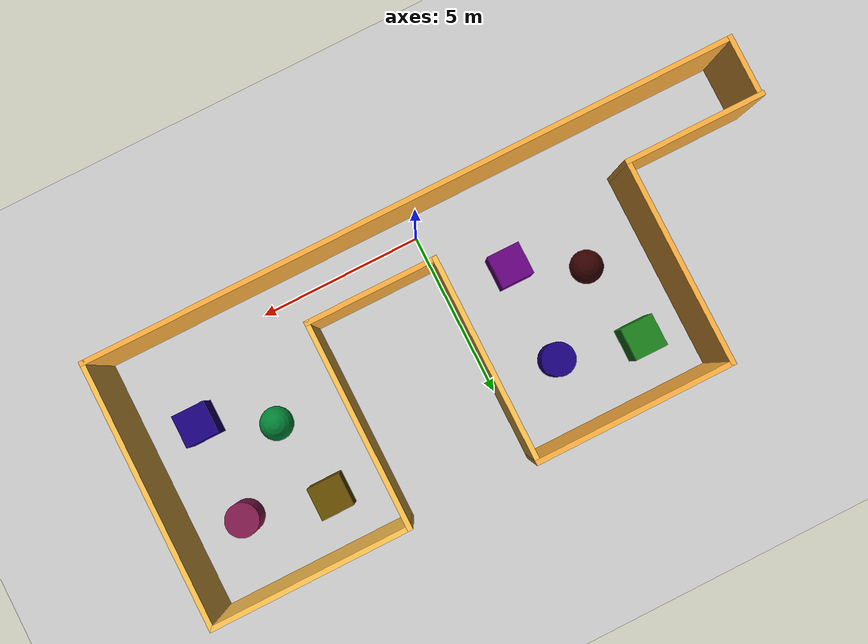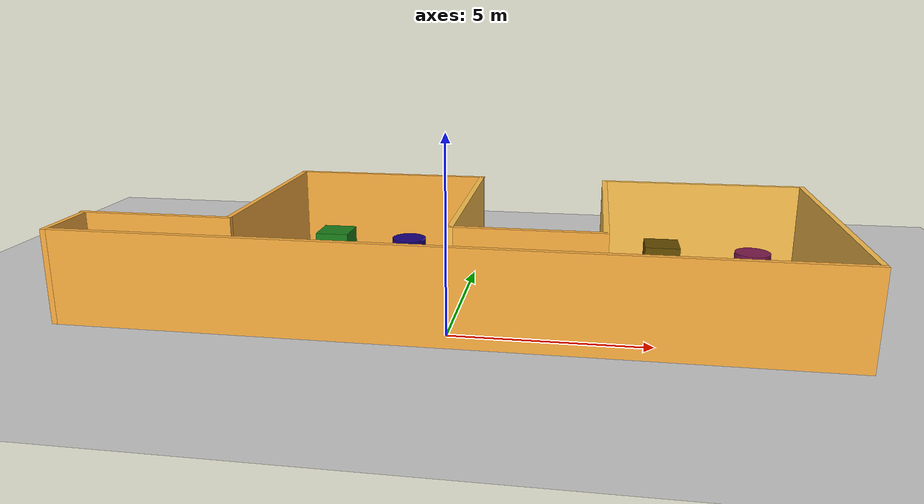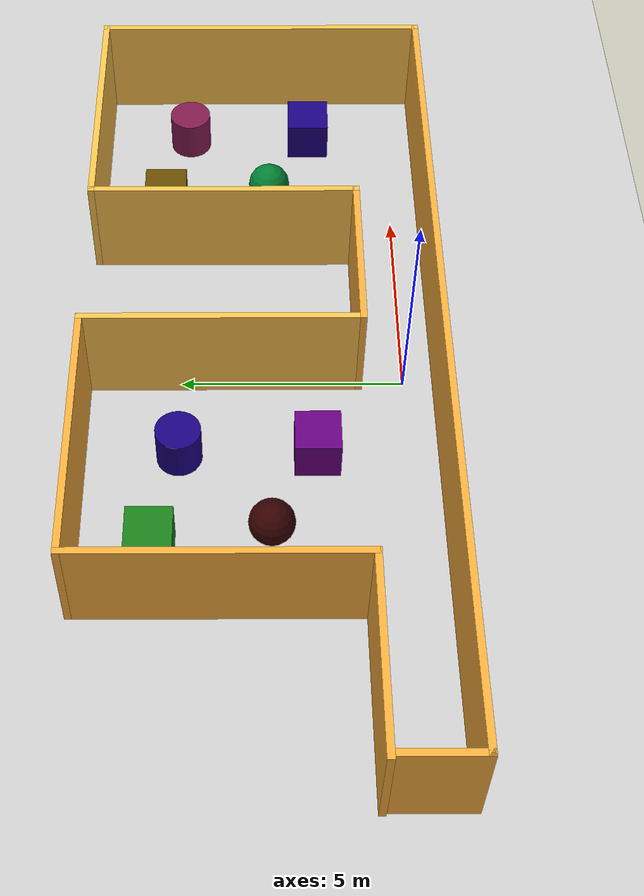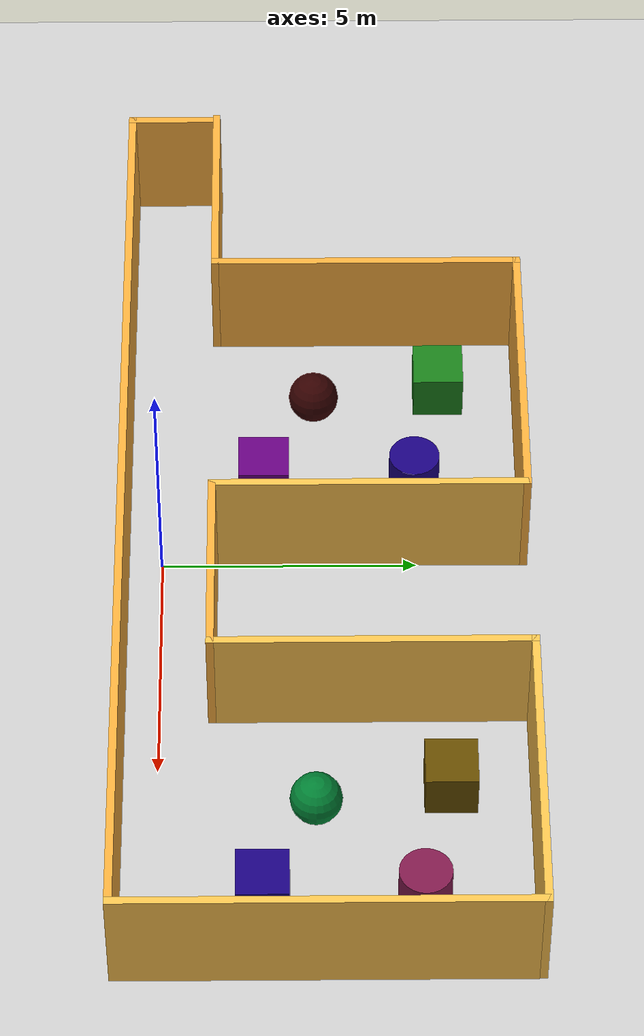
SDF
<sdf version="1.7">
 <world name="default">
  <light name="sun" type="directional">
   <pose>0 0 10 0 -0 0</pose>
   <diffuse>0.8 0.8 0.8 1</diffuse>
   <specular>0.2 0.2 0.2 1</specular>
   <attenuation>
    <range>1000</range>
    <constant>0.9</constant>
    <linear>0.01</linear>
    <quadratic>0.001</quadratic>
   </attenuation>
   <direction>-0.5 0.1 -0.9</direction>
   <spot><inner_angle>0</inner_angle><outer_angle>0</outer_angle><falloff>0</falloff></spot>
  </light>
  <model name="ground_plane">
   <static>1</static>
   <link name="link">
    <collision name="collision">
     <geometry><plane><normal>0 0 1</normal><size>100 100</size></plane></geometry>
     <surface><friction><ode><mu>100</mu><mu2>50</mu2></ode></friction></surface>
    </collision>
    <visual name="visual">
     <cast_shadows>0</cast_shadows>
     <geometry><plane><normal>0 0 1</normal><size>100 100</size></plane></geometry>
     <material>
      <script><uri>file://media/materials/scripts/gazebo.material</uri><name>Gazebo/Grey</name></script>
     </material>
    </visual>
   </link>
  </model>
  <gravity>0 0 -9.8</gravity>
  <magnetic_field>6e-06 2.3e-05 -4.2e-05</magnetic_field>
  <atmosphere type="adiabatic"/>
  <physics type="ode">
   <max_step_size>0.001</max_step_size>
   <real_time_factor>1</real_time_factor>
   <real_time_update_rate>1000</real_time_update_rate>
  </physics>
  <scene><ambient>0.4 0.4 0.4 1</ambient><background>0.7 0.7 0.7 1</background><shadows>1</shadows></scene>
  <spherical_coordinates>
   <surface_model>EARTH_WGS84</surface_model>
   <latitude_deg>0</latitude_deg>
   <longitude_deg>0</longitude_deg>
   <elevation>0</elevation>
   <heading_deg>0</heading_deg>
  </spherical_coordinates>
  <model name="map4_level4">
   <pose>-0.192035 3.19463 0 0 -0 0</pose>
   <link name="Wall_16">
    <collision name="Wall_16_Collision">
     <geometry><box><size>1.75 0.15 2.5</size></box></geometry>
     <pose>0 0 1.25 0 -0 0</pose>
    </collision>
    <visual name="Wall_16_Visual">
     <pose>0 0 1.25 0 -0 0</pose>
     <geometry><box><size>1.75 0.15 2.5</size></box></geometry>
     <material>
      <script><uri>file://media/materials/scripts/gazebo.material</uri><name>Gazebo/Grey</name></script>
      <ambient>0.988235 0.686275 0.243137 1</ambient>
     </material>
     <meta><layer>0</layer></meta>
    </visual>
    <pose>-9.775 -3.125 0 0 -0 -1.5708</pose>
   </link>
   <link name="Wall_17">
    <collision name="Wall_17_Collision">
     <geometry><box><size>19.75 0.15 2.5</size></box></geometry>
     <pose>0 0 1.25 0 -0 0</pose>
    </collision>
    <visual name="Wall_17_Visual">
     <pose>0 0 1.25 0 -0 0</pose>
     <geometry><box><size>19.75 0.15 2.5</size></box></geometry>
     <material>
      <script><uri>file://media/materials/scripts/gazebo.material</uri><name>Gazebo/Grey</name></script>
      <ambient>0.988235 0.686275 0.243137 1</ambient>
     </material>
     <meta><layer>0</layer></meta>
    </visual>
    <pose>0.025 -3.925 0 0 -0 0</pose>
   </link>
   <link name="Wall_20">
    <collision name="Wall_20_Collision">
     <geometry><box><size>8 0.15 2.5</size></box></geometry>
     <pose>0 0 1.25 0 -0 0</pose>
    </collision>
    <visual name="Wall_20_Visual">
     <pose>0 0 1.25 0 -0 0</pose>
     <geometry><box><size>8 0.15 2.5</size></box></geometry>
     <material>
      <script><uri>file://media/materials/scripts/gazebo.material</uri><name>Gazebo/Grey</name></script>
      <ambient>1 0.764706 0.305882 1</ambient>
     </material>
     <meta><layer>0</layer></meta>
    </visual>
    <pose>9.825 -0 0 0 -0 1.5708</pose>
   </link>
   <link name="Wall_21">
    <collision name="Wall_21_Collision">
     <geometry><box><size>6 0.15 2.5</size></box></geometry>
     <pose>0 0 1.25 0 -0 0</pose>
    </collision>
    <visual name="Wall_21_Visual">
     <pose>0 0 1.25 0 -0 0</pose>
     <geometry><box><size>6 0.15 2.5</size></box></geometry>
     <material>
      <script><uri>file://media/materials/scripts/gazebo.material</uri><name>Gazebo/Grey</name></script>
      <ambient>1 0.764706 0.305882 1</ambient>
     </material>
     <meta><layer>0</layer></meta>
    </visual>
    <pose>6.9 3.925 0 0 -0 3.14159</pose>
   </link>
   <link name="Wall_22">
    <collision name="Wall_22_Collision">
     <geometry><box><size>6.25 0.15 2.5</size></box></geometry>
     <pose>0 0 1.25 0 -0 0</pose>
    </collision>
    <visual name="Wall_22_Visual">
     <pose>0 0 1.25 0 -0 0</pose>
     <geometry><box><size>6.25 0.15 2.5</size></box></geometry>
     <material>
      <script><uri>file://media/materials/scripts/gazebo.material</uri><name>Gazebo/Grey</name></script>
      <ambient>1 0.764706 0.305882 1</ambient>
     </material>
     <meta><layer>0</layer></meta>
    </visual>
    <pose>3.975 0.875 0 0 -0 -1.5708</pose>
   </link>
   <link name="Wall_23">
    <collision name="Wall_23_Collision">
     <geometry><box><size>4 0.15 2.5</size></box></geometry>
     <pose>0 0 1.25 0 -0 0</pose>
    </collision>
    <visual name="Wall_23_Visual">
     <pose>0 0 1.25 0 -0 0</pose>
     <geometry><box><size>4 0.15 2.5</size></box></geometry>
     <material>
      <script><uri>file://media/materials/scripts/gazebo.material</uri><name>Gazebo/Grey</name></script>
      <ambient>0.988235 0.686275 0.243137 1</ambient>
     </material>
     <meta><layer>0</layer></meta>
    </visual>
    <pose>2.05 -2.175 0 0 -0 3.14159</pose>
   </link>
   <link name="Wall_24">
    <collision name="Wall_24_Collision">
     <geometry><box><size>6.25 0.15 2.5</size></box></geometry>
     <pose>0 0 1.25 0 -0 0</pose>
    </collision>
    <visual name="Wall_24_Visual">
     <pose>0 0 1.25 0 -0 0</pose>
     <geometry><box><size>6.25 0.15 2.5</size></box></geometry>
     <material>
      <script><uri>file://media/materials/scripts/gazebo.material</uri><name>Gazebo/Grey</name></script>
      <ambient>1 0.764706 0.305882 1</ambient>
     </material>
     <meta><layer>0</layer></meta>
    </visual>
    <pose>0.125 0.875 0 0 -0 1.5708</pose>
   </link>
   <link name="Wall_25">
    <collision name="Wall_25_Collision">
     <geometry><box><size>6 0.15 2.5</size></box></geometry>
     <pose>0 0 1.25 0 -0 0</pose>
    </collision>
    <visual name="Wall_25_Visual">
     <pose>0 0 1.25 0 -0 0</pose>
     <geometry><box><size>6 0.15 2.5</size></box></geometry>
     <material>
      <script><uri>file://media/materials/scripts/gazebo.material</uri><name>Gazebo/Grey</name></script>
      <ambient>0.988235 0.686275 0.243137 1</ambient>
     </material>
     <meta><layer>0</layer></meta>
    </visual>
    <pose>-2.8 3.925 0 0 -0 3.14159</pose>
   </link>
   <link name="Wall_26">
    <collision name="Wall_26_Collision">
     <geometry><box><size>6.25 0.15 2.5</size></box></geometry>
     <pose>0 0 1.25 0 -0 0</pose>
    </collision>
    <visual name="Wall_26_Visual">
     <pose>0 0 1.25 0 -0 0</pose>
     <geometry><box><size>6.25 0.15 2.5</size></box></geometry>
     <material>
      <script><uri>file://media/materials/scripts/gazebo.material</uri><name>Gazebo/Grey</name></script>
      <ambient>0.988235 0.686275 0.243137 1</ambient>
     </material>
     <meta><layer>0</layer></meta>
    </visual>
    <pose>-5.725 0.875 0 0 -0 -1.5708</pose>
   </link>
   <link name="Wall_27">
    <collision name="Wall_27_Collision">
     <geometry><box><size>4.25 0.15 2.5</size></box></geometry>
     <pose>0 0 1.25 0 -0 0</pose>
    </collision>
    <visual name="Wall_27_Visual">
     <pose>0 0 1.25 0 -0 0</pose>
     <geometry><box><size>4.25 0.15 2.5</size></box></geometry>
     <material>
      <script><uri>file://media/materials/scripts/gazebo.material</uri><name>Gazebo/Grey</name></script>
      <ambient>0.988235 0.686275 0.243137 1</ambient>
     </material>
     <meta><layer>0</layer></meta>
    </visual>
    <pose>-7.775 -2.175 0 0 -0 3.14159</pose>
   </link>
   <static>1</static>
  </model>
  <model name="unit_box4444">
   <link name="link">
    <inertial>
     <mass>1</mass>
     <inertia>
      <ixx>0.166667</ixx>
      <ixy>0</ixy>
      <ixz>0</ixz>
      <iyy>0.166667</iyy>
      <iyz>0</iyz>
      <izz>0.166667</izz>
     </inertia>
    </inertial>
    <visual name="visual">
     <geometry><box><size>1 1 1</size></box></geometry>
     <material>
      <script><name>Gazebo/Grey</name><uri>file://media/materials/scripts/gazebo.material</uri></script>
      <shader type="pixel"><normal_map>__default__</normal_map></shader>
      <ambient>0.1 0.5 0.1 0</ambient>
      <diffuse>0.7 0.7 0.7 1</diffuse>
      <specular>0.01 0.01 0.01 1</specular>
      <emissive>0 0 0 1</emissive>
     </material>
    </visual>
    <collision name="collision">
     <geometry><box><size>1 1 1</size></box></geometry>
     <surface>
      <friction>
       <ode><mu>1</mu><mu2>1</mu2><fdir1>0 0 0</fdir1><slip1>0</slip1><slip2>0</slip2></ode>
       <torsional>
        <coefficient>1</coefficient>
        <patch_radius>0</patch_radius>
        <surface_radius>0</surface_radius>
        <use_patch_radius>1</use_patch_radius>
        <ode><slip>0</slip></ode>
       </torsional>
      </friction>
      <bounce><restitution_coefficient>0</restitution_coefficient><threshold>1e+06</threshold></bounce>
      <contact>
       <collide_without_contact>0</collide_without_contact>
       <collide_without_contact_bitmask>1</collide_without_contact_bitmask>
       <collide_bitmask>1</collide_bitmask>
       <ode>
        <soft_cfm>0</soft_cfm>
        <soft_erp>0.2</soft_erp>
        <kp>1e+13</kp>
        <kd>1</kd>
        <max_vel>0.01</max_vel>
        <min_depth>0</min_depth>
       </ode>
       <bullet>
        <split_impulse>1</split_impulse>
        <split_impulse_penetration_threshold>-0.01</split_impulse_penetration_threshold>
        <soft_cfm>0</soft_cfm>
        <soft_erp>0.2</soft_erp>
        <kp>1e+13</kp>
        <kd>1</kd>
       </bullet>
      </contact>
     </surface>
    </collision>
   </link>
   <static>0</static>
   <pose>-4.44025 5.52713 0.5 0 -0 0</pose>
  </model>
  <model name="unit_cylinder333333333">
   <link name="link">
    <inertial>
     <mass>1</mass>
     <inertia><ixx>0.145833</ixx><ixy>0</ixy><ixz>0</ixz><iyy>0.145833</iyy><iyz>0</iyz><izz>0.125</izz></inertia>
    </inertial>
    <visual name="visual">
     <geometry><cylinder><radius>0.5</radius><length>1</length></cylinder></geometry>
     <material>
      <script><name>Gazebo/Grey</name><uri>file://media/materials/scripts/gazebo.material</uri></script>
      <shader type="pixel"><normal_map>__default__</normal_map></shader>
      <ambient>0.1 0 0.5 0</ambient>
      <diffuse>0.7 0.7 0.7 1</diffuse>
      <specular>0.01 0.01 0.01 1</specular>
      <emissive>0 0 0 1</emissive>
     </material>
    </visual>
    <collision name="collision">
     <geometry><cylinder><radius>0.5</radius><length>1</length></cylinder></geometry>
     <surface>
      <friction>
       <ode><mu>1</mu><mu2>1</mu2><fdir1>0 0 0</fdir1><slip1>0</slip1><slip2>0</slip2></ode>
       <torsional>
        <coefficient>1</coefficient>
        <patch_radius>0</patch_radius>
        <surface_radius>0</surface_radius>
        <use_patch_radius>1</use_patch_radius>
        <ode><slip>0</slip></ode>
       </torsional>
      </friction>
      <bounce><restitution_coefficient>0</restitution_coefficient><threshold>1e+06</threshold></bounce>
      <contact>
       <collide_without_contact>0</collide_without_contact>
       <collide_without_contact_bitmask>1</collide_without_contact_bitmask>
       <collide_bitmask>1</collide_bitmask>
       <ode>
        <soft_cfm>0</soft_cfm>
        <soft_erp>0.2</soft_erp>
        <kp>1e+13</kp>
        <kd>1</kd>
        <max_vel>0.01</max_vel>
        <min_depth>0</min_depth>
       </ode>
       <bullet>
        <split_impulse>1</split_impulse>
        <split_impulse_penetration_threshold>-0.01</split_impulse_penetration_threshold>
        <soft_cfm>0</soft_cfm>
        <soft_erp>0.2</soft_erp>
        <kp>1e+13</kp>
        <kd>1</kd>
       </bullet>
      </contact>
     </surface>
    </collision>
   </link>
   <static>0</static>
   <pose>-2 5 0.5 0 -0 0</pose>
  </model>
  <model name="unit_sphere222222222222">
   <link name="link">
    <inertial>
     <mass>1</mass>
     <inertia><ixx>0.1</ixx><ixy>0</ixy><ixz>0</ixz><iyy>0.1</iyy><iyz>0</iyz><izz>0.1</izz></inertia>
    </inertial>
    <visual name="visual">
     <geometry><sphere><radius>0.5</radius></sphere></geometry>
     <material>
      <script><name>Gazebo/Grey</name><uri>file://media/materials/scripts/gazebo.material</uri></script>
      <shader type="pixel"><normal_map>__default__</normal_map></shader>
      <ambient>0.2 0 0 0</ambient>
      <diffuse>0.7 0.7 0.7 1</diffuse>
      <specular>0.01 0.01 0.01 1</specular>
      <emissive>0 0 0 1</emissive>
     </material>
    </visual>
    <collision name="collision">
     <geometry><sphere><radius>0.5</radius></sphere></geometry>
     <surface>
      <friction>
       <ode><mu>1</mu><mu2>1</mu2><fdir1>0 0 0</fdir1><slip1>0</slip1><slip2>0</slip2></ode>
       <torsional>
        <coefficient>1</coefficient>
        <patch_radius>0</patch_radius>
        <surface_radius>0</surface_radius>
        <use_patch_radius>1</use_patch_radius>
        <ode><slip>0</slip></ode>
       </torsional>
      </friction>
      <bounce><restitution_coefficient>0</restitution_coefficient><threshold>1e+06</threshold></bounce>
      <contact>
       <collide_without_contact>0</collide_without_contact>
       <collide_without_contact_bitmask>1</collide_without_contact_bitmask>
       <collide_bitmask>1</collide_bitmask>
       <ode>
        <soft_cfm>0</soft_cfm>
        <soft_erp>0.2</soft_erp>
        <kp>1e+13</kp>
        <kd>1</kd>
        <max_vel>0.01</max_vel>
        <min_depth>0</min_depth>
       </ode>
       <bullet>
        <split_impulse>1</split_impulse>
        <split_impulse_penetration_threshold>-0.01</split_impulse_penetration_threshold>
        <soft_cfm>0</soft_cfm>
        <soft_erp>0.2</soft_erp>
        <kp>1e+13</kp>
        <kd>1</kd>
       </bullet>
      </contact>
     </surface>
    </collision>
   </link>
   <static>0</static>
   <pose>-4 3 0.5 0 -0 0</pose>
  </model>
  <model name="unit_box_122">
   <link name="link">
    <inertial>
     <mass>1</mass>
     <inertia>
      <ixx>0.166667</ixx>
      <ixy>0</ixy>
      <ixz>0</ixz>
      <iyy>0.166667</iyy>
      <iyz>0</iyz>
      <izz>0.166667</izz>
     </inertia>
    </inertial>
    <visual name="visual">
     <geometry><box><size>1 1 1</size></box></geometry>
     <material>
      <script><name>Gazebo/Grey</name><uri>file://media/materials/scripts/gazebo.material</uri></script>
      <shader type="pixel"><normal_map>__default__</normal_map></shader>
      <ambient>0.4 0 0.5 0</ambient>
      <diffuse>0.7 0.7 0.7 1</diffuse>
      <specular>0.01 0.01 0.01 1</specular>
      <emissive>0 0 0 1</emissive>
     </material>
    </visual>
    <collision name="collision">
     <geometry><box><size>1 1 1</size></box></geometry>
     <surface>
      <friction>
       <ode><mu>1</mu><mu2>1</mu2><fdir1>0 0 0</fdir1><slip1>0</slip1><slip2>0</slip2></ode>
       <torsional>
        <coefficient>1</coefficient>
        <patch_radius>0</patch_radius>
        <surface_radius>0</surface_radius>
        <use_patch_radius>1</use_patch_radius>
        <ode><slip>0</slip></ode>
       </torsional>
      </friction>
      <bounce><restitution_coefficient>0</restitution_coefficient><threshold>1e+06</threshold></bounce>
      <contact>
       <collide_without_contact>0</collide_without_contact>
       <collide_without_contact_bitmask>1</collide_without_contact_bitmask>
       <collide_bitmask>1</collide_bitmask>
       <ode>
        <soft_cfm>0</soft_cfm>
        <soft_erp>0.2</soft_erp>
        <kp>1e+13</kp>
        <kd>1</kd>
        <max_vel>0.01</max_vel>
        <min_depth>0</min_depth>
       </ode>
       <bullet>
        <split_impulse>1</split_impulse>
        <split_impulse_penetration_threshold>-0.01</split_impulse_penetration_threshold>
        <soft_cfm>0</soft_cfm>
        <soft_erp>0.2</soft_erp>
        <kp>1e+13</kp>
        <kd>1</kd>
       </bullet>
      </contact>
     </surface>
    </collision>
   </link>
   <static>0</static>
   <pose>-2 2 0.5 0 -0 0</pose>
  </model>
  <model name="unit_box_022">
   <link name="link">
    <inertial>
     <mass>1</mass>
     <inertia>
      <ixx>0.166667</ixx>
      <ixy>0</ixy>
      <ixz>0</ixz>
      <iyy>0.166667</iyy>
      <iyz>0</iyz>
      <izz>0.166667</izz>
     </inertia>
    </inertial>
    <visual name="visual">
     <geometry><box><size>1 1 1</size></box></geometry>
     <material>
      <script><name>Gazebo/Grey</name><uri>file://media/materials/scripts/gazebo.material</uri></script>
      <shader type="pixel"><normal_map>__default__</normal_map></shader>
      <ambient>0.4 0.3 0 0</ambient>
      <diffuse>0.7 0.7 0.7 1</diffuse>
      <specular>0.01 0.01 0.01 1</specular>
      <emissive>0 0 0 1</emissive>
     </material>
    </visual>
    <collision name="collision">
     <geometry><box><size>1 1 1</size></box></geometry>
     <surface>
      <friction>
       <ode><mu>1</mu><mu2>1</mu2><fdir1>0 0 0</fdir1><slip1>0</slip1><slip2>0</slip2></ode>
       <torsional>
        <coefficient>1</coefficient>
        <patch_radius>0</patch_radius>
        <surface_radius>0</surface_radius>
        <use_patch_radius>1</use_patch_radius>
        <ode><slip>0</slip></ode>
       </torsional>
      </friction>
      <bounce><restitution_coefficient>0</restitution_coefficient><threshold>1e+06</threshold></bounce>
      <contact>
       <collide_without_contact>0</collide_without_contact>
       <collide_without_contact_bitmask>1</collide_without_contact_bitmask>
       <collide_bitmask>1</collide_bitmask>
       <ode>
        <soft_cfm>0</soft_cfm>
        <soft_erp>0.2</soft_erp>
        <kp>1e+13</kp>
        <kd>1</kd>
        <max_vel>0.01</max_vel>
        <min_depth>0</min_depth>
       </ode>
       <bullet>
        <split_impulse>1</split_impulse>
        <split_impulse_penetration_threshold>-0.01</split_impulse_penetration_threshold>
        <soft_cfm>0</soft_cfm>
        <soft_erp>0.2</soft_erp>
        <kp>1e+13</kp>
        <kd>1</kd>
       </bullet>
      </contact>
     </surface>
    </collision>
   </link>
   <static>0</static>
   <pose>5.50253 5.5387 0.5 0 -0 0</pose>
  </model>
  <model name="unit_cylinder_0333">
   <link name="link">
    <inertial>
     <mass>1</mass>
     <inertia><ixx>0.145833</ixx><ixy>0</ixy><ixz>0</ixz><iyy>0.145833</iyy><iyz>0</iyz><izz>0.125</izz></inertia>
    </inertial>
    <visual name="visual">
     <geometry><cylinder><radius>0.5</radius><length>1</length></cylinder></geometry>
     <material>
      <script><name>Gazebo/Grey</name><uri>file://media/materials/scripts/gazebo.material</uri></script>
      <shader type="pixel"><normal_map>__default__</normal_map></shader>
      <ambient>0.5 0.1 0.3 0</ambient>
      <diffuse>0.7 0.7 0.7 1</diffuse>
      <specular>0.01 0.01 0.01 1</specular>
      <emissive>0 0 0 1</emissive>
     </material>
    </visual>
    <collision name="collision">
     <geometry><cylinder><radius>0.5</radius><length>1</length></cylinder></geometry>
     <surface>
      <friction>
       <ode><mu>1</mu><mu2>1</mu2><fdir1>0 0 0</fdir1><slip1>0</slip1><slip2>0</slip2></ode>
       <torsional>
        <coefficient>1</coefficient>
        <patch_radius>0</patch_radius>
        <surface_radius>0</surface_radius>
        <use_patch_radius>1</use_patch_radius>
        <ode><slip>0</slip></ode>
       </torsional>
      </friction>
      <bounce><restitution_coefficient>0</restitution_coefficient><threshold>1e+06</threshold></bounce>
      <contact>
       <collide_without_contact>0</collide_without_contact>
       <collide_without_contact_bitmask>1</collide_without_contact_bitmask>
       <collide_bitmask>1</collide_bitmask>
       <ode>
        <soft_cfm>0</soft_cfm>
        <soft_erp>0.2</soft_erp>
        <kp>1e+13</kp>
        <kd>1</kd>
        <max_vel>0.01</max_vel>
        <min_depth>0</min_depth>
       </ode>
       <bullet>
        <split_impulse>1</split_impulse>
        <split_impulse_penetration_threshold>-0.01</split_impulse_penetration_threshold>
        <soft_cfm>0</soft_cfm>
        <soft_erp>0.2</soft_erp>
        <kp>1e+13</kp>
        <kd>1</kd>
       </bullet>
      </contact>
     </surface>
    </collision>
   </link>
   <static>0</static>
   <pose>8 5 0.5 0 -0 0</pose>
  </model>
  <model name="unit_sphere_044">
   <link name="link">
    <inertial>
     <mass>1</mass>
     <inertia><ixx>0.1</ixx><ixy>0</ixy><ixz>0</ixz><iyy>0.1</iyy><iyz>0</iyz><izz>0.1</izz></inertia>
    </inertial>
    <visual name="visual">
     <geometry><sphere><radius>0.5</radius></sphere></geometry>
     <material>
      <script><name>Gazebo/Grey</name><uri>file://media/materials/scripts/gazebo.material</uri></script>
      <shader type="pixel"><normal_map>__default__</normal_map></shader>
      <ambient>0 0.5 0.2 0</ambient>
      <diffuse>0.7 0.7 0.7 1</diffuse>
      <specular>0.01 0.01 0.01 1</specular>
      <emissive>0 0 0 1</emissive>
     </material>
    </visual>
    <collision name="collision">
     <geometry><sphere><radius>0.5</radius></sphere></geometry>
     <surface>
      <friction>
       <ode><mu>1</mu><mu2>1</mu2><fdir1>0 0 0</fdir1><slip1>0</slip1><slip2>0</slip2></ode>
       <torsional>
        <coefficient>1</coefficient>
        <patch_radius>0</patch_radius>
        <surface_radius>0</surface_radius>
        <use_patch_radius>1</use_patch_radius>
        <ode><slip>0</slip></ode>
       </torsional>
      </friction>
      <bounce><restitution_coefficient>0</restitution_coefficient><threshold>1e+06</threshold></bounce>
      <contact>
       <collide_without_contact>0</collide_without_contact>
       <collide_without_contact_bitmask>1</collide_without_contact_bitmask>
       <collide_bitmask>1</collide_bitmask>
       <ode>
        <soft_cfm>0</soft_cfm>
        <soft_erp>0.2</soft_erp>
        <kp>1e+13</kp>
        <kd>1</kd>
        <max_vel>0.01</max_vel>
        <min_depth>0</min_depth>
       </ode>
       <bullet>
        <split_impulse>1</split_impulse>
        <split_impulse_penetration_threshold>-0.01</split_impulse_penetration_threshold>
        <soft_cfm>0</soft_cfm>
        <soft_erp>0.2</soft_erp>
        <kp>1e+13</kp>
        <kd>1</kd>
       </bullet>
      </contact>
     </surface>
    </collision>
   </link>
   <static>0</static>
   <pose>6 3 0.5 0 -0 0</pose>
  </model>
  <model name="unit_box_2222">
   <link name="link">
    <inertial>
     <mass>1</mass>
     <inertia>
      <ixx>0.166667</ixx>
      <ixy>0</ixy>
      <ixz>0</ixz>
      <iyy>0.166667</iyy>
      <iyz>0</iyz>
      <izz>0.166667</izz>
     </inertia>
    </inertial>
    <visual name="visual">
     <geometry><box><size>1 1 1</size></box></geometry>
     <material>
      <script><name>Gazebo/Grey</name><uri>file://media/materials/scripts/gazebo.material</uri></script>
      <shader type="pixel"><normal_map>__default__</normal_map></shader>
      <ambient>0.1 0 0.5 0</ambient>
      <diffuse>0.7 0.7 0.7 1</diffuse>
      <specular>0.01 0.01 0.01 1</specular>
      <emissive>0 0 0 1</emissive>
     </material>
    </visual>
    <collision name="collision">
     <geometry><box><size>1 1 1</size></box></geometry>
     <surface>
      <friction>
       <ode><mu>1</mu><mu2>1</mu2><fdir1>0 0 0</fdir1><slip1>0</slip1><slip2>0</slip2></ode>
       <torsional>
        <coefficient>1</coefficient>
        <patch_radius>0</patch_radius>
        <surface_radius>0</surface_radius>
        <use_patch_radius>1</use_patch_radius>
        <ode><slip>0</slip></ode>
       </torsional>
      </friction>
      <bounce><restitution_coefficient>0</restitution_coefficient><threshold>1e+06</threshold></bounce>
      <contact>
       <collide_without_contact>0</collide_without_contact>
       <collide_without_contact_bitmask>1</collide_without_contact_bitmask>
       <collide_bitmask>1</collide_bitmask>
       <ode>
        <soft_cfm>0</soft_cfm>
        <soft_erp>0.2</soft_erp>
        <kp>1e+13</kp>
        <kd>1</kd>
        <max_vel>0.01</max_vel>
        <min_depth>0</min_depth>
       </ode>
       <bullet>
        <split_impulse>1</split_impulse>
        <split_impulse_penetration_threshold>-0.01</split_impulse_penetration_threshold>
        <soft_cfm>0</soft_cfm>
        <soft_erp>0.2</soft_erp>
        <kp>1e+13</kp>
        <kd>1</kd>
       </bullet>
      </contact>
     </surface>
    </collision>
   </link>
   <static>0</static>
   <pose>8 2 0.5 0 -0 0</pose>
  </model>
 </world>
</sdf>
